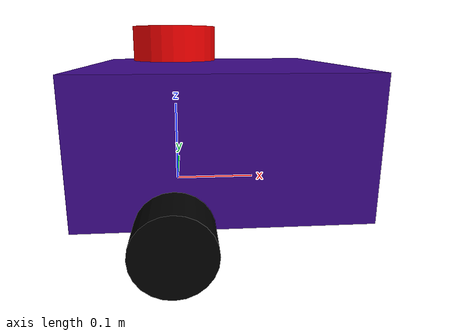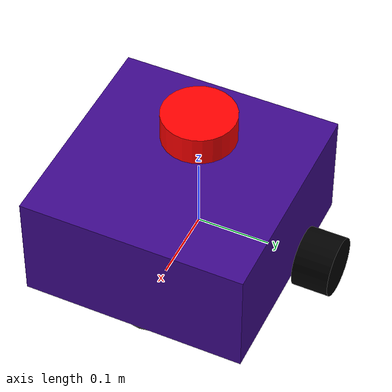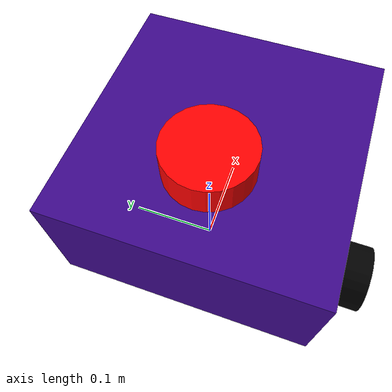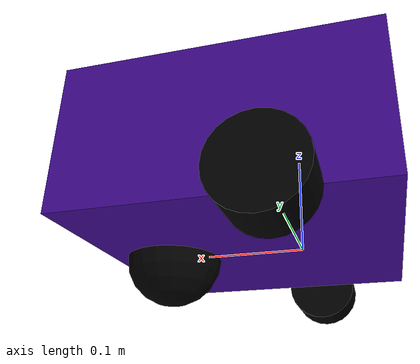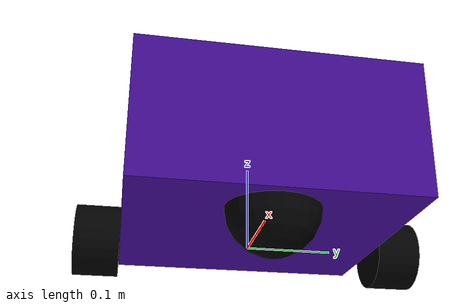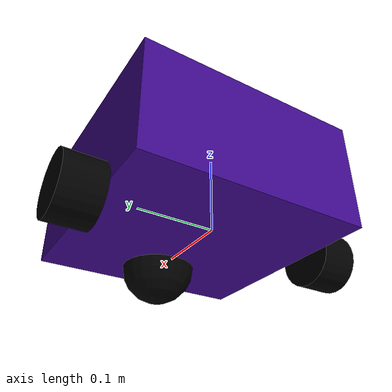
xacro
<?xml version="1.0"?>
<robot xmlns:xacro="http://www.ros.org/wiki/xacro"  name="robot">
    <xacro:arg name="use_ros2_control" default="false"/>

    <xacro:include filename="robot_core.xacro" />

    <xacro:include filename="lidar.xacro" />
    <xacro:if value="$(arg use_ros2_control)">
        <xacro:include filename="ros2_control.xacro" />
    </xacro:if>
    <xacro:unless value="$(arg use_ros2_control)">
        <xacro:include filename="gazebo_control.xacro" />
    </xacro:unless>

</robot>

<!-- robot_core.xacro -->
<robot xmlns:xacro="http://www.ros.org/wiki/xacro">
  <xacro:include filename="inertia_macros.xacro" />

  <material name="white">
    <color rgba="1 1 1 1"/>
  </material>
  <material name="blue">
    <color rgba="0.2 0.2 1 1"/>
  </material>
  <material name="purple">
    <color rgba="0.240 0.0330 0.550 1"/>
  </material>
  <material name="black">
    <color rgba="0 0 0 1"/>
  </material>
  <material name="green">
    <color rgba="0.220 0.610 0.0244 1"/>
  </material>
  <material name="red">
    <color rgba="1 0 0 1"/>
  </material>

  <!-- BASE FOOTPRINT  -->
  <link name="base_footprint"/>

  <joint name="base_footprint_joint" type="fixed">
    <parent link="base_footprint"/>
    <child link="base_link"/>
    <origin xyz="0 0 0" rpy="0 0 0"/>
  </joint>

  <!-- BASE LINK -->
  <link name="base_link"/>

  <!-- CHASSIS -->
  <joint name="chassis_joint" type="fixed">
    <parent link="base_link"/>
    <child link="chassis"/>
    <origin xyz="-0.1 0 0"/>
  </joint>

  <link name="chassis">
    <visual>
      <origin xyz="0.15 0 0.075" rpy="0 0 0"/>
      <geometry>
        <box size="0.3 0.3 0.15"/>
      </geometry>
      <material name="purple"/>
    </visual>
    <collision>
      <origin xyz="0.15 0 0.075" rpy="0 0 0"/>
      <geometry>
        <box size="0.3 0.3 0.15"/>
      </geometry>
    </collision>
    <xacro:inertial_box mass="0.5" x="0.3" y="0.3" z="0.15">
      <origin xyz="0.15 0 0.075" rpy="0 0 0"/>
    </xacro:inertial_box>
  </link>

  <gazebo reference="chassis">
    <material>Gazebo/Purple</material>
  </gazebo>

  <!-- LEFT WHEEL -->
  <joint name="left_wheel_joint" type="continuous">
    <parent link="base_link"/>
    <child link="left_wheel"/>
    <origin xyz="0 0.175 0" rpy="-${pi/2} 0 0"/>
    <axis xyz="0 0 1"/>
    <limit effort="0.05" velocity="10.0"/>
  </joint>

  <link name="left_wheel">
    <visual>
      <geometry>
        <cylinder radius="0.04" length="0.05"/>
      </geometry>
      <material name="black"/>
    </visual>
    <collision>
      <geometry>
        <sphere radius="0.04"/>
      </geometry>
    </collision>
    <xacro:inertial_cylinder mass="0.1" length="0.04" radius="0.05">
      <origin xyz="0 0 0" rpy="0 0 0"/>
    </xacro:inertial_cylinder>
  </link>

  <gazebo reference="left_wheel">
    <material>Gazebo/Black</material>
  </gazebo>

  <!-- RIGHT WHEEL -->
  <joint name="right_wheel_joint" type="continuous">
    <parent link="base_link"/>
    <child link="right_wheel"/>
    <origin xyz="0 -0.175 0" rpy="-${pi/2} 0 0"/>
    <axis xyz="0 0 1"/>
    <limit effort="0.05" velocity="10.0"/>
  </joint>

  <link name="right_wheel">
    <visual>
      <geometry>
        <cylinder radius="0.04" length="0.05"/>
      </geometry>
      <material name="black"/>
    </visual>
    <collision>
      <geometry>
        <sphere radius="0.04"/>
      </geometry>
    </collision>
    <xacro:inertial_cylinder mass="0.1" length="0.04" radius="0.05">
      <origin xyz="0 0 0" rpy="0 0 0"/>
    </xacro:inertial_cylinder>
  </link>

  <gazebo reference="right_wheel">
    <material>Gazebo/Black</material>
  </gazebo>

  <!-- CASTER WHEEL -->
  <joint name="caster_wheel_joint" type="fixed">
    <parent link="chassis"/>
    <child link="caster_wheel"/>
    <origin xyz="0.24 0 0" rpy="0 0 0"/>
  </joint>

  <link name="caster_wheel">
    <visual>
      <geometry>
        <sphere radius="0.05"/>
      </geometry>
      <material name="black"/>
    </visual>
    <collision>
      <geometry>
        <sphere radius="0.05"/>
      </geometry>
    </collision>
    <xacro:inertial_sphere mass="0.1" radius="0.05">
      <origin xyz="0 0 0" rpy="0 0 0"/>
    </xacro:inertial_sphere>
  </link>

  <gazebo reference="caster_wheel">
    <material>Gazebo/Black</material>
    <mu1 value="0.001"/>
    <mu2 value="0.001"/>
  </gazebo>

</robot>

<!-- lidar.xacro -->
<robot xmlns:xacro="http://www.ros.org/wiki/xacro">

  <joint name="lidar_joint" type="fixed">
    <parent link="chassis"/>
    <child link="lidar_link"/>
    <origin xyz="0.1 0 0.175" rpy="0 0 0"/>
  </joint>

  <link name="lidar_link">
    <visual>
      <geometry>
        <cylinder radius="0.05" length="0.04"/>
      </geometry>
      <material name="red"/>
    </visual>
    <collision>
      <geometry>
        <cylinder radius="0.05" length="0.04"/>
      </geometry>
    </collision>
    <xacro:inertial_cylinder mass="0.1" length="0.04" radius="0.05">
      <origin xyz="0 0 0" rpy="0 0 0"/>
    </xacro:inertial_cylinder>
  </link>

  <gazebo reference="lidar_link">
    <sensor name="laser" type="gpu_lidar">
      <pose>0 0 0 0 0 0</pose>
      <visualize>false</visualize>
      <update_rate>10</update_rate>
      <topic>scan</topic>
      <gz_frame_id>laser_frame</gz_frame_id>
      <lidar>
        <scan>
          <horizontal>
            <samples>360</samples>
            <resolution>1</resolution>
            <min_angle>-3.14159</min_angle>
            <max_angle>3.14159</max_angle>
          </horizontal>
        </scan>
        <range>
          <min>0.3</min>
          <max>12</max>
          <resolution>0.01</resolution>
        </range>
        <noise>
          <type>gaussian</type>
          <mean>0.0</mean>
          <stddev>0.01</stddev>
        </noise>
      </lidar>
      <always_on>true</always_on>
    </sensor>
  </gazebo>

</robot>
